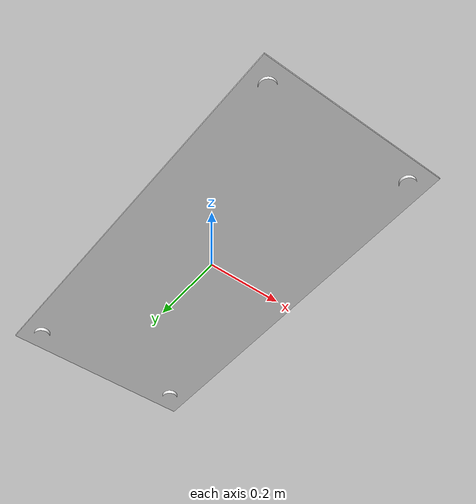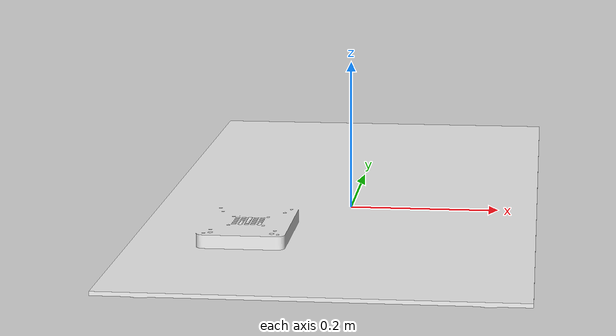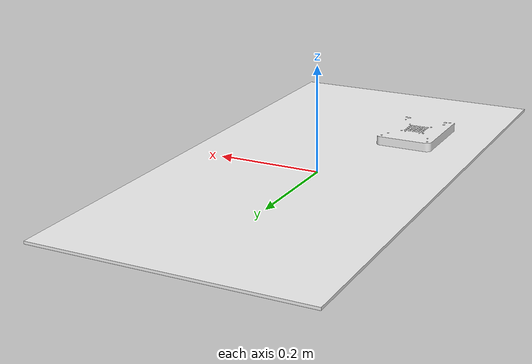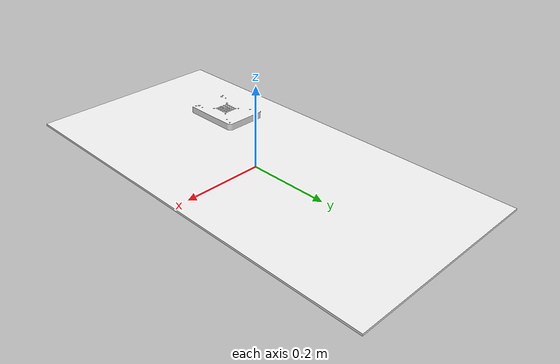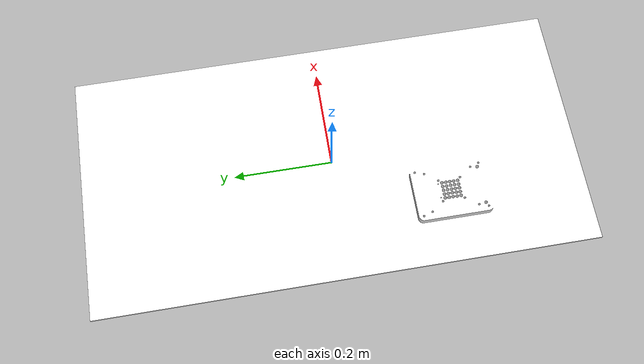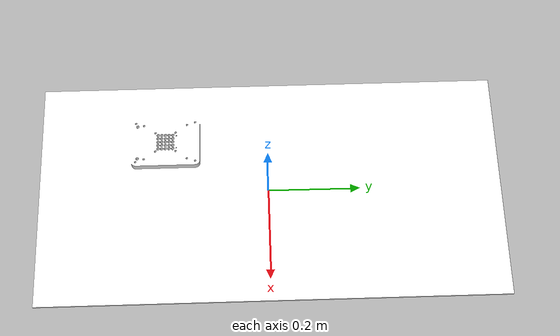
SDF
<?xml version="1.0" ?>
<sdf version="1.6">
  <model name="stand">
    <pose>0 0 0 0 0 0</pose>
    <static>true</static>
    <link name="body">
      <visual name="visual">
        <geometry>
          <mesh><uri>model://stand/media/stand.dae</uri></mesh>
        </geometry>
        <material>
        </material>
      </visual>
      <collision name="collision">
        <geometry>
          <mesh><uri>model://stand/media/stand.dae</uri></mesh>
        </geometry>
      </collision>
    </link>
  </model>
</sdf>
